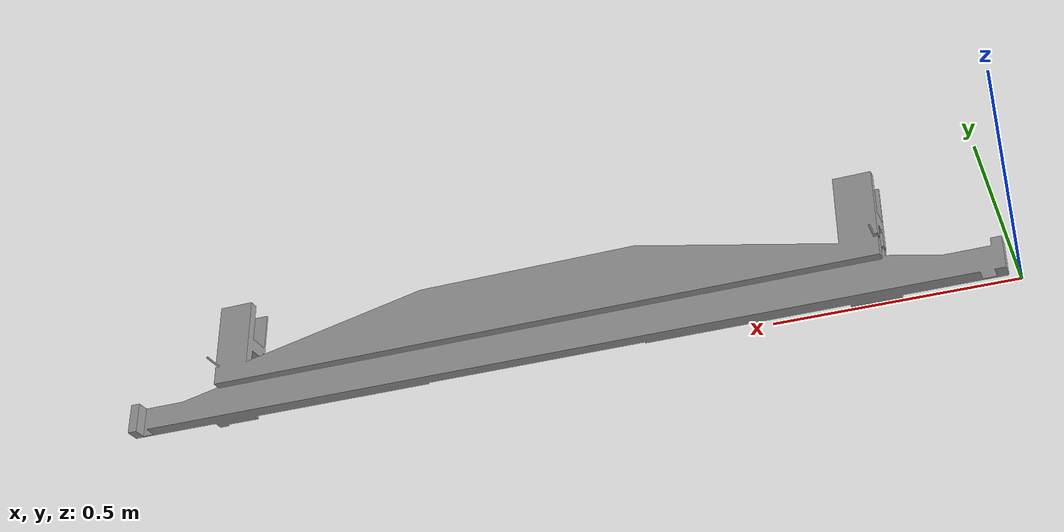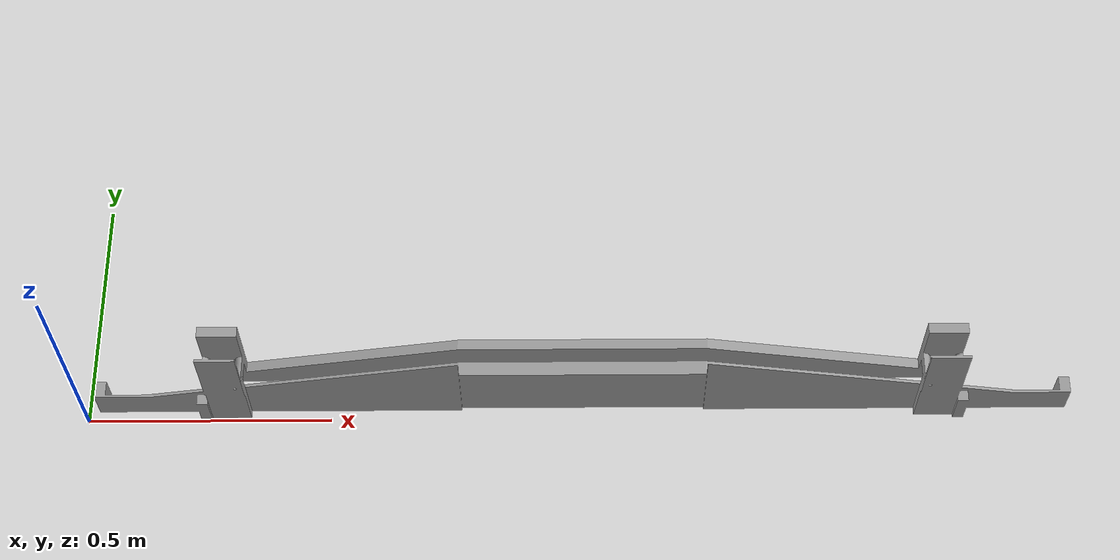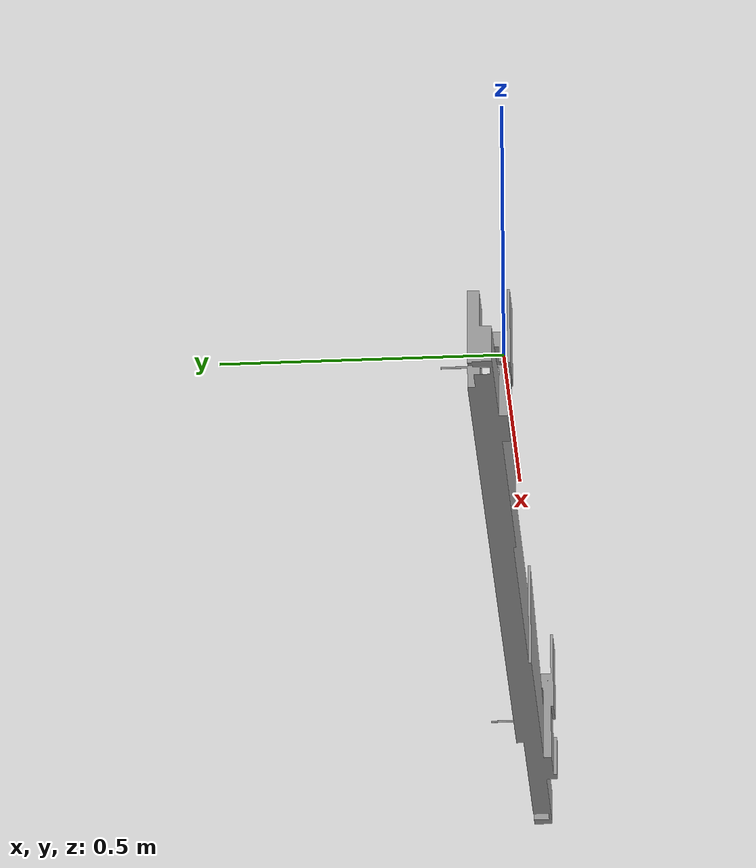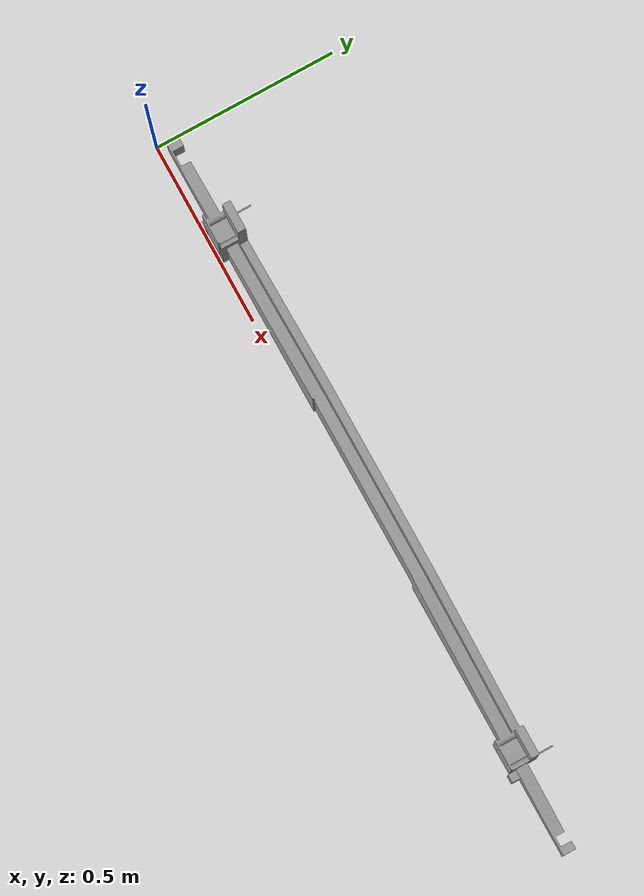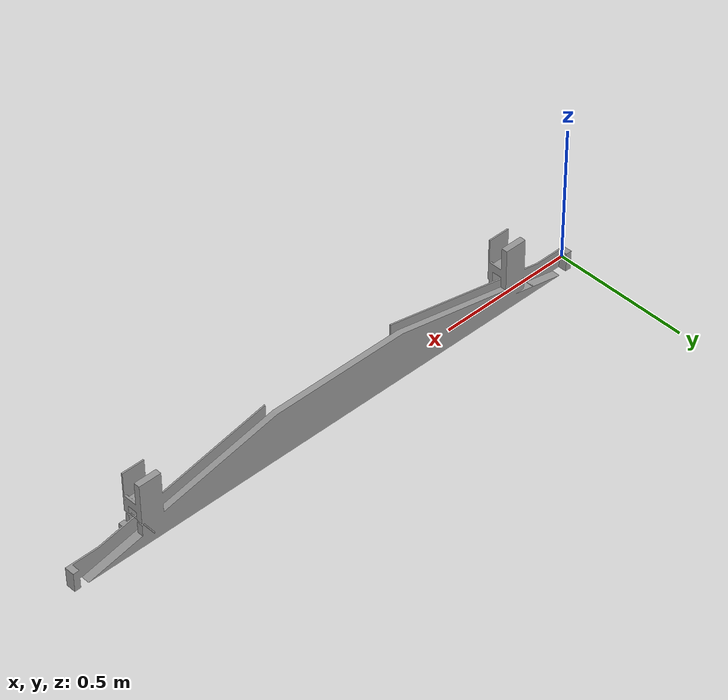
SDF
<?xml version="1.0"?>
<sdf version="1.5">
    <model name="accelerateur">
        <static>false</static>
        <link name="table_accelerator">
            <collision name="collision">
                <geometry>
                    <mesh>
                        <uri>model://accelerateur/meshes/assemblage1.STL</uri>
                        <scale>0.001 0.001 0.001</scale>
                    </mesh>
                </geometry>
                <surface>
                    <friction>
                        <ode>
                            <mu>100</mu>
                            <mu2>50</mu2>
                        </ode>
                    </friction>
                </surface>
            </collision>
            <visual name="visual">
                <geometry>
                    <mesh>
                        <uri>model://accelerateur/meshes/assemblage1.STL</uri>
                        <scale>0.001 0.001 0.001</scale>
                    </mesh>
                </geometry>
                <material>
                    <script>
                        <uri>file://media/materials/scripts/gazebo.material</uri>
                        <name>Gazebo/Grey</name>
                    </script>
                </material>
            </visual>
        </link>
    </model>
</sdf>
